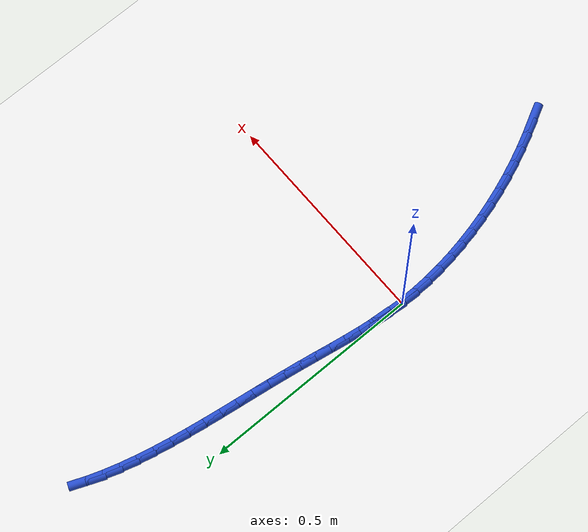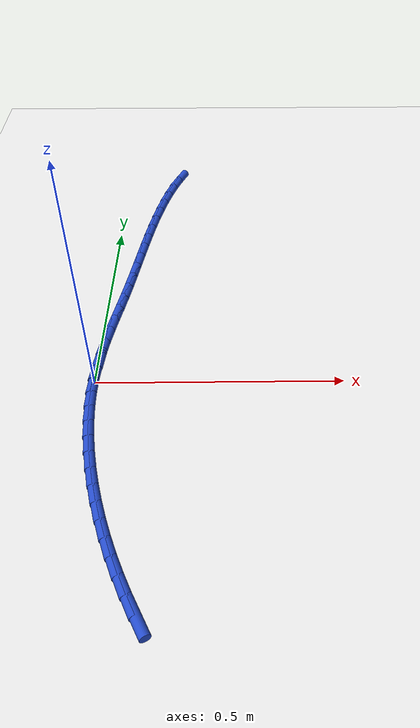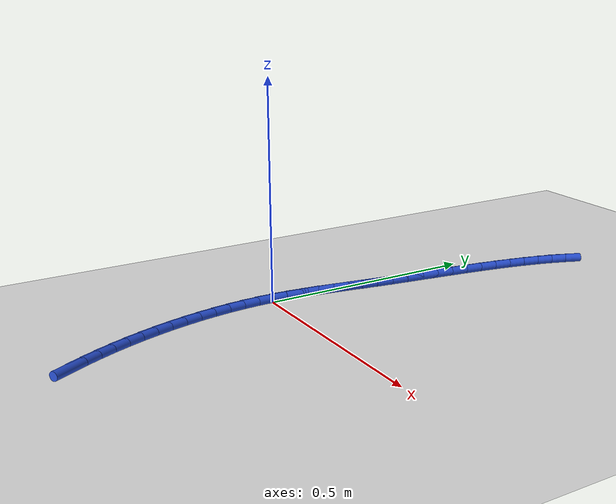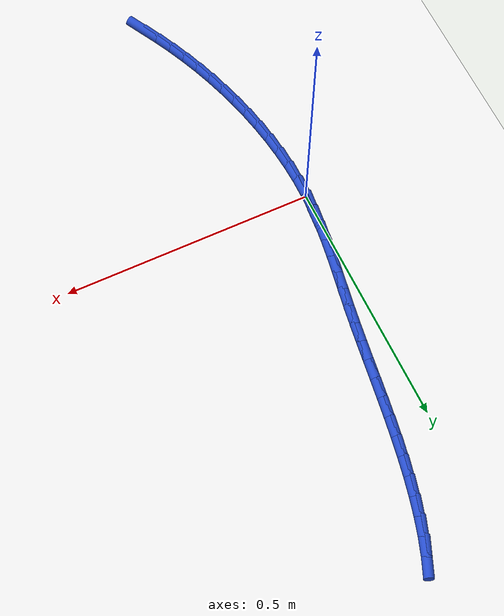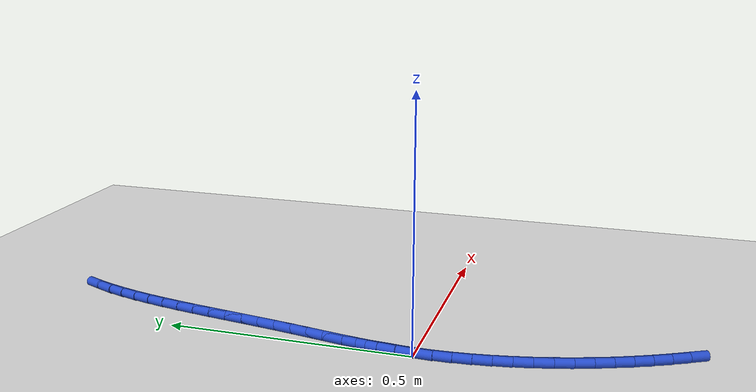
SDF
<sdf version="1.6">
 <world name="default">
  <model name="ground_plane">
   <static>1</static>
   <link name="link">
    <collision name="collision">
     <geometry><plane><normal>0 0 1</normal><size>100 100</size></plane></geometry>
     <surface><friction><ode><mu>100</mu><mu2>50</mu2></ode></friction></surface>
    </collision>
    <visual name="visual">
     <cast_shadows>0</cast_shadows>
     <geometry><plane><normal>0 0 1</normal><size>100 100</size></plane></geometry>
     <material>
      <script><uri>file://media/materials/scripts/gazebo.material</uri><name>Gazebo/WhiteGlow</name></script>
     </material>
    </visual>
   </link>
  </model>
  <model name="line">
   <link name="link_0">
    <pose>6.938893903907228e-18 -2.0816681711721685e-17 0.01 0 1.57 1.5196126872821865</pose>
    <collision name="collision">
     <geometry><cylinder><radius>0.01</radius><length>0.08</length></cylinder></geometry>
    </collision>
    <visual name="visual">
     <material>
      <script><name>Gazebo/Blue</name><uri>file://media/materials/scripts/gazebo.material</uri></script>
     </material>
     <geometry><cylinder><radius>0.01</radius><length>0.08</length></cylinder></geometry>
    </visual>
   </link>
   <link name="link_1">
    <pose>0.0018341050438170502 0.03580251697795233 0.01 0 1.57 1.4773591040473364</pose>
    <collision name="collision">
     <geometry><cylinder><radius>0.01</radius><length>0.08</length></cylinder></geometry>
    </collision>
    <visual name="visual">
     <material>
      <script><name>Gazebo/Blue</name><uri>file://media/materials/scripts/gazebo.material</uri></script>
     </material>
     <geometry><cylinder><radius>0.01</radius><length>0.08</length></cylinder></geometry>
    </visual>
   </link>
   <link name="link_2">
    <pose>0.005172107383323331 0.07142303761819246 0.01 0 1.57 1.4437243982588635</pose>
    <collision name="collision">
     <geometry><cylinder><radius>0.01</radius><length>0.08</length></cylinder></geometry>
    </collision>
    <visual name="visual">
     <material>
      <script><name>Gazebo/Blue</name><uri>file://media/materials/scripts/gazebo.material</uri></script>
     </material>
     <geometry><cylinder><radius>0.01</radius><length>0.08</length></cylinder></geometry>
    </visual>
   </link>
   <link name="link_3">
    <pose>0.009717413193203276 0.1069998539755503 0.01 0 1.57 1.419020517256803</pose>
    <collision name="collision">
     <geometry><cylinder><radius>0.01</radius><length>0.08</length></cylinder></geometry>
    </collision>
    <visual name="visual">
     <material>
      <script><name>Gazebo/Blue</name><uri>file://media/materials/scripts/gazebo.material</uri></script>
     </material>
     <geometry><cylinder><radius>0.01</radius><length>0.08</length></cylinder></geometry>
    </visual>
   </link>
   <link name="link_4">
    <pose>0.015173428648141281 0.14267125810485565 0.01 0 1.57 1.403315764648538</pose>
    <collision name="collision">
     <geometry><cylinder><radius>0.01</radius><length>0.08</length></cylinder></geometry>
    </collision>
    <visual name="visual">
     <material>
      <script><name>Gazebo/Blue</name><uri>file://media/materials/scripts/gazebo.material</uri></script>
     </material>
     <geometry><cylinder><radius>0.01</radius><length>0.08</length></cylinder></geometry>
    </visual>
   </link>
   <link name="link_5">
    <pose>0.021243559922821783 0.17857554206093854 0.01 0 1.57 1.3964956989461528</pose>
    <collision name="collision">
     <geometry><cylinder><radius>0.01</radius><length>0.08</length></cylinder></geometry>
    </collision>
    <visual name="visual">
     <material>
      <script><name>Gazebo/Blue</name><uri>file://media/materials/scripts/gazebo.material</uri></script>
     </material>
     <geometry><cylinder><radius>0.01</radius><length>0.08</length></cylinder></geometry>
    </visual>
   </link>
   <link name="link_6">
    <pose>0.027631213191929193 0.21485099789862874 0.01 0 1.57 1.3983098857076652</pose>
    <collision name="collision">
     <geometry><cylinder><radius>0.01</radius><length>0.08</length></cylinder></geometry>
    </collision>
    <visual name="visual">
     <material>
      <script><name>Gazebo/Blue</name><uri>file://media/materials/scripts/gazebo.material</uri></script>
     </material>
     <geometry><cylinder><radius>0.01</radius><length>0.08</length></cylinder></geometry>
    </visual>
   </link>
   <link name="link_7">
    <pose>0.03403979463014792 0.25163591767275617 0.01 0 1.57 1.4081093619255767</pose>
    <collision name="collision">
     <geometry><cylinder><radius>0.01</radius><length>0.08</length></cylinder></geometry>
    </collision>
    <visual name="visual">
     <material>
      <script><name>Gazebo/Blue</name><uri>file://media/materials/scripts/gazebo.material</uri></script>
     </material>
     <geometry><cylinder><radius>0.01</radius><length>0.08</length></cylinder></geometry>
    </visual>
   </link>
   <link name="link_8">
    <pose>0.04018281333392843 0.2890619461315127 0.01 0 1.57 1.419282910490159</pose>
    <collision name="collision">
     <geometry><cylinder><radius>0.01</radius><length>0.08</length></cylinder></geometry>
    </collision>
    <visual name="visual">
     <material>
      <script><name>Gazebo/Blue</name><uri>file://media/materials/scripts/gazebo.material</uri></script>
     </material>
     <geometry><cylinder><radius>0.01</radius><length>0.08</length></cylinder></geometry>
    </visual>
   </link>
   <link name="link_9">
    <pose>0.045993105781639884 0.327116419634341 0.01 0 1.57 1.4258902677619953</pose>
    <collision name="collision">
     <geometry><cylinder><radius>0.01</radius><length>0.08</length></cylinder></geometry>
    </collision>
    <visual name="visual">
     <material>
      <script><name>Gazebo/Blue</name><uri>file://media/materials/scripts/gazebo.material</uri></script>
     </material>
     <geometry><cylinder><radius>0.01</radius><length>0.08</length></cylinder></geometry>
    </visual>
   </link>
   <link name="link_10">
    <pose>0.05161582714931033 0.365646977577666 0.01 0 1.57 1.427910235961586</pose>
    <collision name="collision">
     <geometry><cylinder><radius>0.01</radius><length>0.08</length></cylinder></geometry>
    </collision>
    <visual name="visual">
     <material>
      <script><name>Gazebo/Blue</name><uri>file://media/materials/scripts/gazebo.material</uri></script>
     </material>
     <geometry><cylinder><radius>0.01</radius><length>0.08</length></cylinder></geometry>
    </visual>
   </link>
   <link name="link_11">
    <pose>0.05720483333438501 0.40449553464138405 0.01 0 1.57 1.425471503671163</pose>
    <collision name="collision">
     <geometry><cylinder><radius>0.01</radius><length>0.08</length></cylinder></geometry>
    </collision>
    <visual name="visual">
     <material>
      <script><name>Gazebo/Blue</name><uri>file://media/materials/scripts/gazebo.material</uri></script>
     </material>
     <geometry><cylinder><radius>0.01</radius><length>0.08</length></cylinder></geometry>
    </visual>
   </link>
   <link name="link_12">
    <pose>0.06291398023430894 0.4435040055053905 0.01 0 1.57 1.4186088225762155</pose>
    <collision name="collision">
     <geometry><cylinder><radius>0.01</radius><length>0.08</length></cylinder></geometry>
    </collision>
    <visual name="visual">
     <material>
      <script><name>Gazebo/Blue</name><uri>file://media/materials/scripts/gazebo.material</uri></script>
     </material>
     <geometry><cylinder><radius>0.01</radius><length>0.08</length></cylinder></geometry>
    </visual>
   </link>
   <link name="link_13">
    <pose>0.06889712374652725 0.4825143048495812 0.01 0 1.57 1.4072677283929116</pose>
    <collision name="collision">
     <geometry><cylinder><radius>0.01</radius><length>0.08</length></cylinder></geometry>
    </collision>
    <visual name="visual">
     <material>
      <script><name>Gazebo/Blue</name><uri>file://media/materials/scripts/gazebo.material</uri></script>
     </material>
     <geometry><cylinder><radius>0.01</radius><length>0.08</length></cylinder></geometry>
    </visual>
   </link>
   <link name="link_14">
    <pose>0.07530811976848513 0.5213683473538522 0.01 0 1.57 1.3913073940252811</pose>
    <collision name="collision">
     <geometry><cylinder><radius>0.01</radius><length>0.08</length></cylinder></geometry>
    </collision>
    <visual name="visual">
     <material>
      <script><name>Gazebo/Blue</name><uri>file://media/materials/scripts/gazebo.material</uri></script>
     </material>
     <geometry><cylinder><radius>0.01</radius><length>0.08</length></cylinder></geometry>
    </visual>
   </link>
   <link name="link_15">
    <pose>0.08230082419762767 0.5599080476980991 0.01 0 1.57 1.370502373686411</pose>
    <collision name="collision">
     <geometry><cylinder><radius>0.01</radius><length>0.08</length></cylinder></geometry>
    </collision>
    <visual name="visual">
     <material>
      <script><name>Gazebo/Blue</name><uri>file://media/materials/scripts/gazebo.material</uri></script>
     </material>
     <geometry><cylinder><radius>0.01</radius><length>0.08</length></cylinder></geometry>
    </visual>
   </link>
   <link name="link_16">
    <pose>0.09002909293139999 0.5979753205622179 0.01 0 1.57 1.3445444193676876</pose>
    <collision name="collision">
     <geometry><cylinder><radius>0.01</radius><length>0.08</length></cylinder></geometry>
    </collision>
    <visual name="visual">
     <material>
      <script><name>Gazebo/Blue</name><uri>file://media/materials/scripts/gazebo.material</uri></script>
     </material>
     <geometry><cylinder><radius>0.01</radius><length>0.08</length></cylinder></geometry>
    </visual>
   </link>
   <link name="link_17">
    <pose>0.0986467818672472 0.6354120806261041 0.01 0 1.57 1.3130461849527493</pose>
    <collision name="collision">
     <geometry><cylinder><radius>0.01</radius><length>0.08</length></cylinder></geometry>
    </collision>
    <visual name="visual">
     <material>
      <script><name>Gazebo/Blue</name><uri>file://media/materials/scripts/gazebo.material</uri></script>
     </material>
     <geometry><cylinder><radius>0.01</radius><length>0.08</length></cylinder></geometry>
    </visual>
   </link>
   <link name="link_18">
    <pose>0.10830774690261441 0.6720602425696538 0.01 0 1.57 1.2755495704446145</pose>
    <collision name="collision">
     <geometry><cylinder><radius>0.01</radius><length>0.08</length></cylinder></geometry>
    </collision>
    <visual name="visual">
     <material>
      <script><name>Gazebo/Blue</name><uri>file://media/materials/scripts/gazebo.material</uri></script>
     </material>
     <geometry><cylinder><radius>0.01</radius><length>0.08</length></cylinder></geometry>
    </visual>
   </link>
   <link name="link_19">
    <pose>0.11916584393494674 0.7077617210727625 0.01 0 1.57 1.2315427428161414</pose>
    <collision name="collision">
     <geometry><cylinder><radius>0.01</radius><length>0.08</length></cylinder></geometry>
    </collision>
    <visual name="visual">
     <material>
      <script><name>Gazebo/Blue</name><uri>file://media/materials/scripts/gazebo.material</uri></script>
     </material>
     <geometry><cylinder><radius>0.01</radius><length>0.08</length></cylinder></geometry>
    </visual>
   </link>
   <link name="link_20">
    <pose>0.1313749288616894 0.7423584308153264 0.01 0 1.57 1.1804913949938178</pose>
    <collision name="collision">
     <geometry><cylinder><radius>0.01</radius><length>0.08</length></cylinder></geometry>
    </collision>
    <visual name="visual">
     <material>
      <script><name>Gazebo/Blue</name><uri>file://media/materials/scripts/gazebo.material</uri></script>
     </material>
     <geometry><cylinder><radius>0.01</radius><length>0.08</length></cylinder></geometry>
    </visual>
   </link>
   <link name="link_216">
    <pose>0.12765422085197792 -0.4881227934155918 0.01 0 1.57 -1.084433025419098</pose>
    <collision name="collision">
     <geometry><cylinder><radius>0.01</radius><length>0.08</length></cylinder></geometry>
    </collision>
    <visual name="visual">
     <material>
      <script><name>Gazebo/Blue</name><uri>file://media/materials/scripts/gazebo.material</uri></script>
     </material>
     <geometry><cylinder><radius>0.01</radius><length>0.08</length></cylinder></geometry>
    </visual>
   </link>
   <link name="link_217">
    <pose>0.11046660539706794 -0.4556151783032166 0.01 0 1.57 -1.1173630991682741</pose>
    <collision name="collision">
     <geometry><cylinder><radius>0.01</radius><length>0.08</length></cylinder></geometry>
    </collision>
    <visual name="visual">
     <material>
      <script><name>Gazebo/Blue</name><uri>file://media/materials/scripts/gazebo.material</uri></script>
     </material>
     <geometry><cylinder><radius>0.01</radius><length>0.08</length></cylinder></geometry>
    </visual>
   </link>
   <link name="link_218">
    <pose>0.09448202696893832 -0.42281260387150243 0.01 0 1.57 -1.151104757338887</pose>
    <collision name="collision">
     <geometry><cylinder><radius>0.01</radius><length>0.08</length></cylinder></geometry>
    </collision>
    <visual name="visual">
     <material>
      <script><name>Gazebo/Blue</name><uri>file://media/materials/scripts/gazebo.material</uri></script>
     </material>
     <geometry><cylinder><radius>0.01</radius><length>0.08</length></cylinder></geometry>
    </visual>
   </link>
   <link name="link_219">
    <pose>0.07969188236947489 -0.38966590615924707 0.01 0 1.57 -1.18545900410095</pose>
    <collision name="collision">
     <geometry><cylinder><radius>0.01</radius><length>0.08</length></cylinder></geometry>
    </collision>
    <visual name="visual">
     <material>
      <script><name>Gazebo/Blue</name><uri>file://media/materials/scripts/gazebo.material</uri></script>
     </material>
     <geometry><cylinder><radius>0.01</radius><length>0.08</length></cylinder></geometry>
    </visual>
   </link>
   <link name="link_220">
    <pose>0.06608756840056454 -0.35612592120525044 0.01 0 1.57 -1.2202114413651322</pose>
    <collision name="collision">
     <geometry><cylinder><radius>0.01</radius><length>0.08</length></cylinder></geometry>
    </collision>
    <visual name="visual">
     <material>
      <script><name>Gazebo/Blue</name><uri>file://media/materials/scripts/gazebo.material</uri></script>
     </material>
     <geometry><cylinder><radius>0.01</radius><length>0.08</length></cylinder></geometry>
    </visual>
   </link>
   <link name="link_221">
    <pose>0.05366048186409301 -0.3221434850483102 0.01 0 1.57 -1.255137959498331</pose>
    <collision name="collision">
     <geometry><cylinder><radius>0.01</radius><length>0.08</length></cylinder></geometry>
    </collision>
    <visual name="visual">
     <material>
      <script><name>Gazebo/Blue</name><uri>file://media/materials/scripts/gazebo.material</uri></script>
     </material>
     <geometry><cylinder><radius>0.01</radius><length>0.08</length></cylinder></geometry>
    </visual>
   </link>
   <link name="link_222">
    <pose>0.04240201956194648 -0.28766943372722475 0.01 0 1.57 -1.2900347259604974</pose>
    <collision name="collision">
     <geometry><cylinder><radius>0.01</radius><length>0.08</length></cylinder></geometry>
    </collision>
    <visual name="visual">
     <material>
      <script><name>Gazebo/Blue</name><uri>file://media/materials/scripts/gazebo.material</uri></script>
     </material>
     <geometry><cylinder><radius>0.01</radius><length>0.08</length></cylinder></geometry>
    </visual>
   </link>
   <link name="link_223">
    <pose>0.0323054080658038 -0.252657839202398 0.01 0 1.57 -1.3253444843748712</pose>
    <collision name="collision">
     <geometry><cylinder><radius>0.01</radius><length>0.08</length></cylinder></geometry>
    </collision>
    <visual name="visual">
     <material>
      <script><name>Gazebo/Blue</name><uri>file://media/materials/scripts/gazebo.material</uri></script>
     </material>
     <geometry><cylinder><radius>0.01</radius><length>0.08</length></cylinder></geometry>
    </visual>
   </link>
   <link name="link_224">
    <pose>0.023408524766607517 -0.21714173776698706 0.01 0 1.57 -1.3618605757549695</pose>
    <collision name="collision">
     <geometry><cylinder><radius>0.01</radius><length>0.08</length></cylinder></geometry>
    </collision>
    <visual name="visual">
     <material>
      <script><name>Gazebo/Blue</name><uri>file://media/materials/scripts/gazebo.material</uri></script>
     </material>
     <geometry><cylinder><radius>0.01</radius><length>0.08</length></cylinder></geometry>
    </visual>
   </link>
   <link name="link_225">
    <pose>0.015795371807370066 -0.18123573667590476 0.01 0 1.57 -1.3999057062817737</pose>
    <collision name="collision">
     <geometry><cylinder><radius>0.01</radius><length>0.08</length></cylinder></geometry>
    </collision>
    <visual name="visual">
     <material>
      <script><name>Gazebo/Blue</name><uri>file://media/materials/scripts/gazebo.material</uri></script>
     </material>
     <geometry><cylinder><radius>0.01</radius><length>0.08</length></cylinder></geometry>
    </visual>
   </link>
   <link name="link_226">
    <pose>0.009552075984932426 -0.14505820060385333 0.01 0 1.57 -1.4397807361751913</pose>
    <collision name="collision">
     <geometry><cylinder><radius>0.01</radius><length>0.08</length></cylinder></geometry>
    </collision>
    <visual name="visual">
     <material>
      <script><name>Gazebo/Blue</name><uri>file://media/materials/scripts/gazebo.material</uri></script>
     </material>
     <geometry><cylinder><radius>0.01</radius><length>0.08</length></cylinder></geometry>
    </visual>
   </link>
   <link name="link_227">
    <pose>0.004764764096135604 -0.10872749422553502 0.01 0 1.57 -1.481793655756517</pose>
    <collision name="collision">
     <geometry><cylinder><radius>0.01</radius><length>0.08</length></cylinder></geometry>
    </collision>
    <visual name="visual">
     <material>
      <script><name>Gazebo/Blue</name><uri>file://media/materials/scripts/gazebo.material</uri></script>
     </material>
     <geometry><cylinder><radius>0.01</radius><length>0.08</length></cylinder></geometry>
    </visual>
   </link>
   <link name="link_228">
    <pose>0.0015195629378205282 -0.07236198221565111 0.01 0 1.57 -1.5262591879579612</pose>
    <collision name="collision">
     <geometry><cylinder><radius>0.01</radius><length>0.08</length></cylinder></geometry>
    </collision>
    <visual name="visual">
     <material>
      <script><name>Gazebo/Blue</name><uri>file://media/materials/scripts/gazebo.material</uri></script>
     </material>
     <geometry><cylinder><radius>0.01</radius><length>0.08</length></cylinder></geometry>
    </visual>
   </link>
   <link name="link_229">
    <pose>-9.740069317163216e-05 -0.03608002924890574 0.01 0 1.57 1.5680967597881237</pose>
    <collision name="collision">
     <geometry><cylinder><radius>0.01</radius><length>0.08</length></cylinder></geometry>
    </collision>
    <visual name="visual">
     <material>
      <script><name>Gazebo/Blue</name><uri>file://media/materials/scripts/gazebo.material</uri></script>
     </material>
     <geometry><cylinder><radius>0.01</radius><length>0.08</length></cylinder></geometry>
    </visual>
   </link>
   <link name="link_230">
    <pose>1.1275702593849246e-17 -2.220446049250313e-16 0.01 0 1.57 1.5177726530198237</pose>
    <collision name="collision">
     <geometry><cylinder><radius>0.01</radius><length>0.08</length></cylinder></geometry>
    </collision>
    <visual name="visual">
     <material>
      <script><name>Gazebo/Blue</name><uri>file://media/materials/scripts/gazebo.material</uri></script>
     </material>
     <geometry><cylinder><radius>0.01</radius><length>0.08</length></cylinder></geometry>
    </visual>
   </link>
   <link name="link_231">
    <pose>0.0018978918141764542 0.035759740856363215 0.01 0 1.57 1.4640576460512416</pose>
    <collision name="collision">
     <geometry><cylinder><radius>0.01</radius><length>0.08</length></cylinder></geometry>
    </collision>
    <visual name="visual">
     <material>
      <script><name>Gazebo/Blue</name><uri>file://media/materials/scripts/gazebo.material</uri></script>
     </material>
     <geometry><cylinder><radius>0.01</radius><length>0.08</length></cylinder></geometry>
    </visual>
   </link>
   <link name="link_232">
    <pose>0.005682401546198703 0.07108082864548229 0.01 0 1.57 1.4910231625200927</pose>
    <collision name="collision">
     <geometry><cylinder><radius>0.01</radius><length>0.08</length></cylinder></geometry>
    </collision>
    <visual name="visual">
     <material>
      <script><name>Gazebo/Blue</name><uri>file://media/materials/scripts/gazebo.material</uri></script>
     </material>
     <geometry><cylinder><radius>0.01</radius><length>0.08</length></cylinder></geometry>
    </visual>
   </link>
  </model>
 </world>
</sdf>
